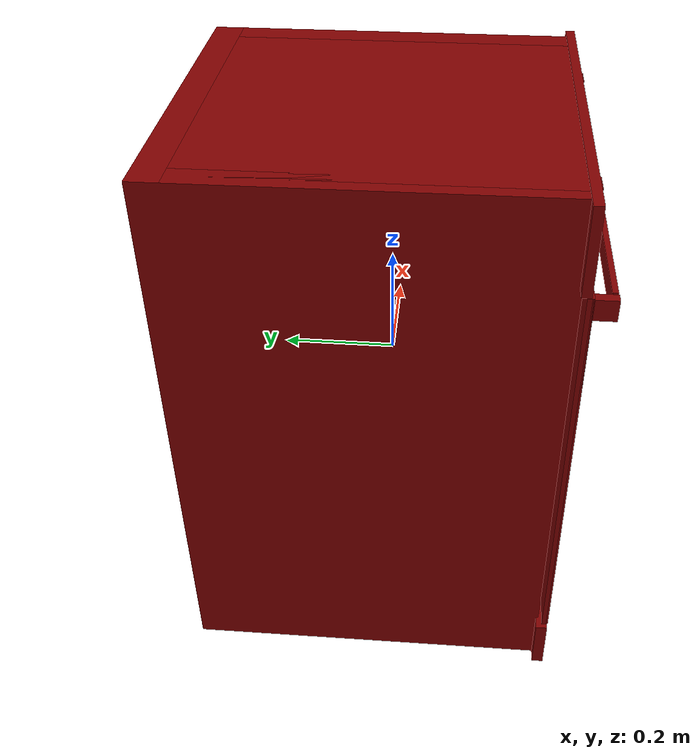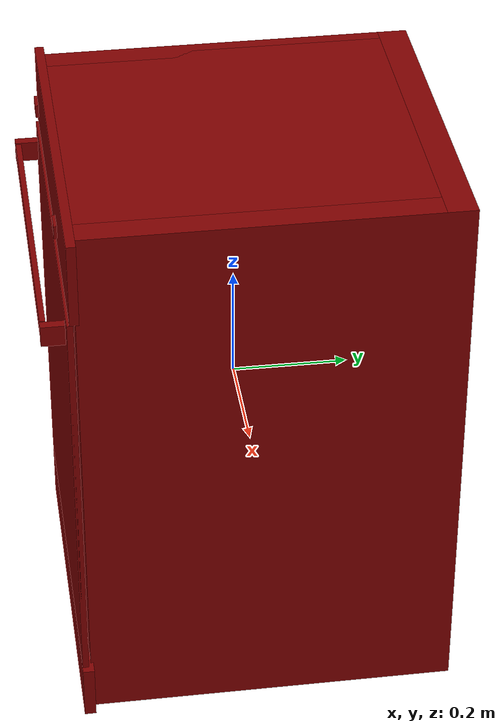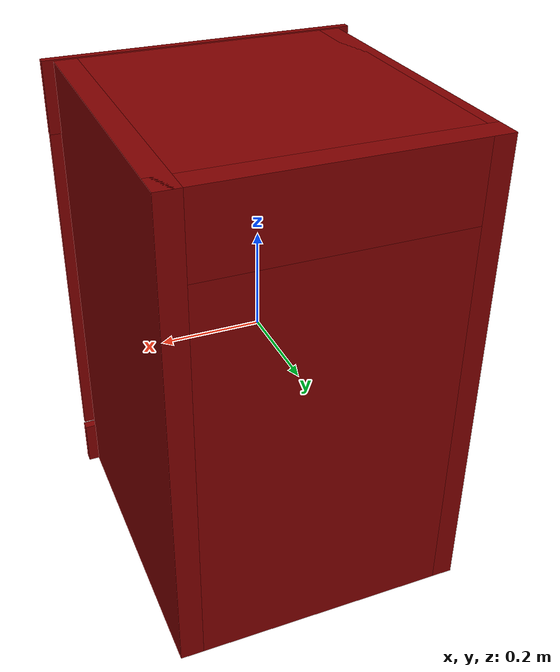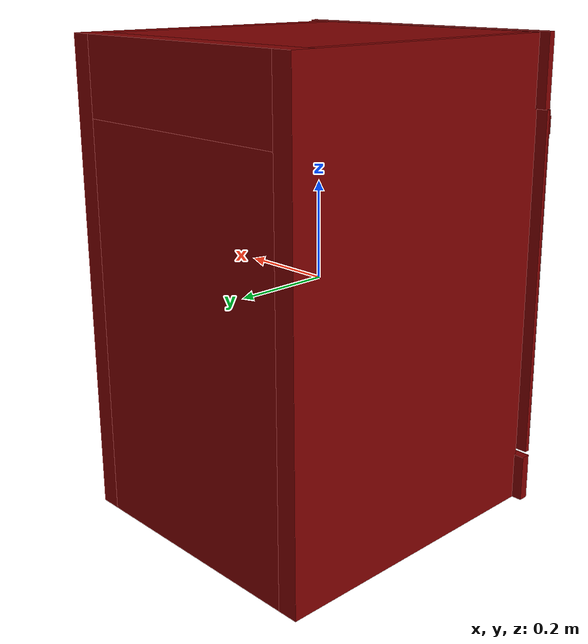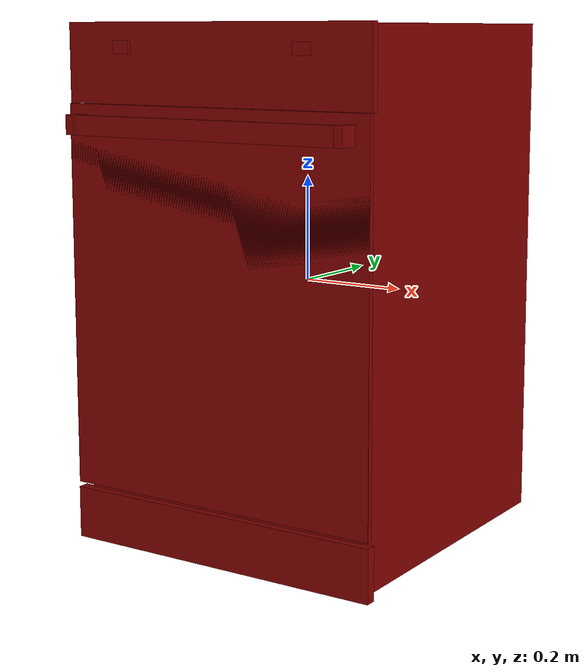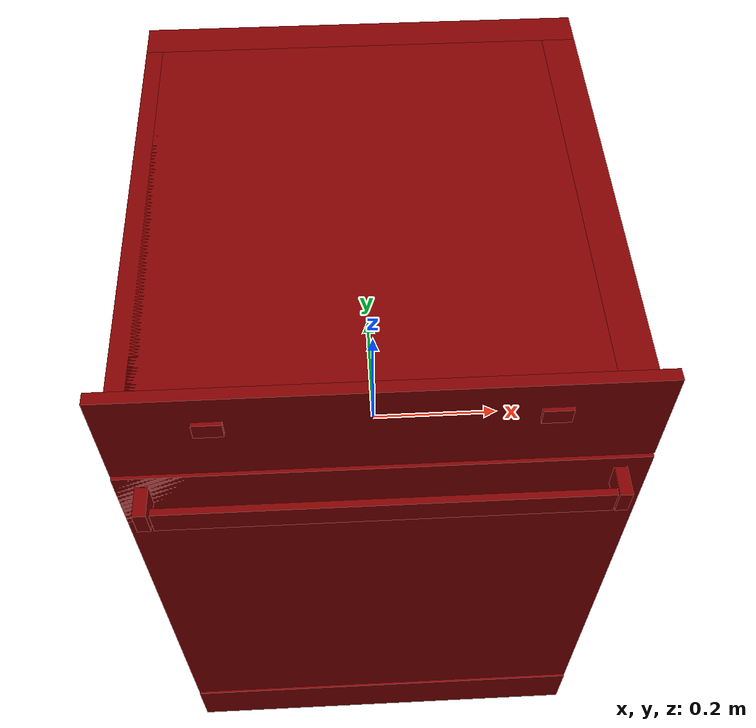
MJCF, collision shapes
<?xml version='1.0' encoding='UTF-8'?>
<mujoco model="model">
  <option timestep="0.002" gravity="0.0 0.0 -9.81"/>
  <compiler angle="radian"/>
  <asset>
    <mesh file="visuals/button_lock.obj" name="button_lock_vis"/>
    <mesh file="visuals/button_power.obj" name="button_power_vis"/>
    <mesh file="visuals/Body001.obj" name="Body001_vis"/>
    <mesh file="visuals/door.obj" name="door_vis"/>
    <mesh file="visuals/rack0.obj" name="rack0_vis"/>
    <mesh file="visuals/rack1.obj" name="rack1_vis"/>
    <texture file="visuals/T_BC001.png" name="Body001_material" type="2d"/>
    <material name="Body001_material" rgba="1 1 1 1.0" texture="Body001_material" shininess="0.5" specular="0.5"/>
    <texture file="visuals/T_BC001.png" name="button_lock_material" type="2d"/>
    <material name="button_lock_material" rgba="1 1 1 1.0" texture="button_lock_material" shininess="0.5" specular="0.3103448502657381"/>
    <texture file="visuals/T_BC001.png" name="button_power_material" type="2d"/>
    <material name="button_power_material" rgba="1 1 1 1.0" texture="button_power_material" shininess="0.5" specular="0.3103448502657381"/>
    <texture file="visuals/T_BC001.png" name="door_material" type="2d"/>
    <material name="door_material" rgba="1 1 1 1.0" texture="door_material" shininess="0.5" specular="0.5"/>
    <texture file="visuals/T_BC001.png" name="rack0_material" type="2d"/>
    <material name="rack0_material" rgba="1 1 1 1.0" texture="rack0_material" shininess="0.5" specular="5"/>
    <texture file="visuals/T_BC001.png" name="rack1_material" type="2d"/>
    <material name="rack1_material" rgba="1 1 1 1.0" texture="rack1_material" shininess="0.5" specular="5"/>
  </asset>
  <default>
    <default class="visual">
      <geom conaffinity="0" contype="0" group="1" type="mesh"/>
    </default>
    <default class="collision">
      <geom group="0" rgba="0.5 0 0 0.5"/>
    </default>
    <default class="spawn">
      <geom group="0" rgba="1 1 1 0.5" contype="0" conaffinity="0"/>
      <site group="0" rgba="1 1 1 0.5"/>
    </default>
    <default class="region">
      <geom group="1" conaffinity="0" contype="0" rgba="0 1 0 0"/>
    </default>
  </default>
  <worldbody>
    <body>
      <body name="object">
        <geom mesh="Body001_vis" type="mesh" solimp="0.998 0.998 0.001" solref="0.001 1" friction="0.95 0.3 0.1" class="visual" material="Body001_material"/>
        <geom class="collision" type="box" pos="0.27678153 0.02741197 -0.00124992" size="0.02303975448012352 0.3207204043865204 0.48832184076309204" quat="1.0 0.0 0.0 0.0"/>
        <geom class="collision" type="box" pos="0.00109850 0.02572379 0.40894777" size="0.2785699963569641 0.3224084675312042 0.0781240463256836" quat="1.0 0.0 0.0 0.0"/>
        <geom class="collision" type="box" pos="0.00109850 0.02553424 -0.43334389" size="0.2835451662540436 0.31878456473350525 0.05622786656022072" quat="1.0 0.0 0.0 0.0"/>
        <geom class="collision" type="box" pos="-0.00001807 0.32272574 -0.00124987" size="0.29983875155448914 0.025406407192349434 0.48832184076309204" quat="1.0 0.0 0.0 0.0"/>
        <geom class="collision" type="box" pos="-0.23403548 0.01761582 0.01407012" size="0.022516710683703423 0.28532058000564575 0.007528679445385933" quat="1.0 0.0 0.0 0.0"/>
        <geom class="collision" type="box" pos="-0.00003960 -0.29873434 -0.43907839" size="0.3223387598991394 0.010000337846577168 0.049591921269893646" quat="1.0 0.0 0.0 0.0"/>
        <geom class="collision" type="box" pos="0.00003939 -0.29657165 0.41642144" size="0.3223385214805603 0.007837408222258091 0.07315186411142349" quat="1.0 0.0 0.0 0.0"/>
        <geom class="collision" type="box" pos="-0.27809176 0.02741194 -0.00124997" size="0.02176547609269619 0.3207204043865204 0.4883217513561249" quat="1.0 0.0 0.0 0.0"/>
        <geom class="collision" type="box" pos="-0.23403548 0.01761582 -0.26421988" size="0.022516710683703423 0.28532058000564575 0.006652594543993473" quat="1.0 0.0 0.0 0.0"/>
        <geom class="collision" type="box" pos="0.23040469 0.01761582 -0.26433200" size="0.02455715648829937 0.28532058000564575 0.0065404633060097694" quat="1.0 0.0 0.0 0.0"/>
        <geom class="collision" type="box" pos="0.23040469 0.01761582 0.01407362" size="0.02455715648829937 0.28532058000564575 0.0075321807526052" quat="1.0 0.0 0.0 0.0"/>
        <body name="button_lock">
          <joint axis="0.0 1.0 0.0" pos="0.19055155 -0.31104577 0.44505936" limited="true" name="button_lock_joint" range="0.0 0.003" type="slide" damping="1" frictionloss="1" armature=".01" stiffness="4" springref="-1"/>
          <geom mesh="button_lock_vis" type="mesh" solimp="0.998 0.998 0.001" solref="0.001 1" friction="0.95 0.3 0.1" class="visual" material="button_lock_material"/>
          <geom class="collision" type="box" pos="0.19034868 -0.31267155 0.44500965" size="0.017222853377461433 0.002614381490275264 0.01137451734393835" quat="1.0 0.0 0.0 0.0"/>
        </body>
        <body name="button_power">
          <joint axis="0.0 1.0 0.0" pos="-0.19386935 -0.31104577 0.44505936" limited="true" name="button_power_joint" range="0.0 0.003" type="slide" damping="1" frictionloss="1" armature=".01" stiffness="4" springref="-1"/>
          <geom mesh="button_power_vis" type="mesh" solimp="0.998 0.998 0.001" solref="0.001 1" friction="0.95 0.3 0.1" class="visual" material="button_power_material"/>
          <geom class="collision" type="box" pos="-0.19387625 -0.31267155 0.44500965" size="0.01722284033894539 0.0026143789291381836 0.011374504305422306" quat="1.0 0.0 0.0 0.0"/>
        </body>
        <body name="door">
          <joint axis="1.0 0.0 0.0" pos="-0.0001505 -0.30873461135792435 -0.3791860395227051" limited="true" name="door_joint" range="0.0 0.6235987755982988" type="hinge" damping="1" frictionloss="10" armature="1" stiffness="2"/>
          <geom mesh="door_vis" type="mesh" solimp="0.998 0.998 0.001" solref="0.001 1" friction="0.95 0.3 0.1" class="visual" material="door_material"/>
          <geom class="collision" type="box" pos="-0.00015050 -0.30329314 -0.01839531" size="0.32139691710472107 0.00544140487909317 0.36079609394073486" quat="1.0 0.0 0.0 0.0"/>
          <geom class="collision" type="box" pos="-0.00119755 -0.34371615 0.30582523" size="0.2758886218070984 0.004677655175328255 0.01819409243762493" quat="1.0 0.0 0.0 0.0" name="door_handle_main"/>
          <geom class="collision" type="box" pos="-0.28891420 -0.32916099 0.30582523" size="0.008229694329202175 0.019743427634239197 0.01819407008588314" quat="1.0 0.0 0.0 0.0"/>
          <geom class="collision" type="box" pos="0.28469649 -0.32916099 0.30582523" size="0.007895516231656075 0.019743436947464943 0.018194079399108887" quat="1.0 0.0 0.0 0.0"/>
          <geom class="collision" type="box" pos="-0.00015050 -0.30708245 -0.01839531" size="0.32139691710472107 0.0016521613579243422 0.3607907295227051" quat="1.0 0.0 0.0 0.0" name="door_main"/>
        </body>
        <body name="rack0">
          <geom class="region" name="reg_rack0" type="box" pos="0.002374139999999997 0.027687555000000003 -0.12086479" size="0.22553667 0.207498645 0.12265504999999999"/>
          <joint axis="0.0 -1.0 0.0" pos="0.00157052 0.02620097 -0.15502195" limited="true" name="rack0_joint" range="0.0 0.163" type="slide" damping="1" frictionloss="1" armature=".01" stiffness="0.05"/>
          <geom mesh="rack0_vis" type="mesh" solimp="0.998 0.998 0.001" solref="0.001 1" friction="0.95 0.3 0.1" class="visual" material="rack0_material"/>
          <geom class="collision" type="cylinder" pos="-0.01910914 0.17006942 -0.19183671" size="0.0025402321480214596 0.061900075525045395" quat="4.3319283804521547e-07 -2.0873290651479692e-08 0.0992436558008194 -0.9950631856918335"/>
          <geom class="collision" type="cylinder" pos="-0.01910915 0.08137975 -0.19176318" size="0.0025402321480214596 0.061900075525045395" quat="7.976017286637216e-07 -4.6659700103646173e-08 -0.0849602147936821 -0.99638432264328"/>
          <geom class="collision" type="cylinder" pos="-0.01910915 -0.02637292 -0.19187245" size="0.0025402321480214596 0.0619000680744648" quat="5.6451420960002e-07 -8.122519545850082e-08 -0.1087351143360138 -0.9940707683563232"/>
          <geom class="collision" type="cylinder" pos="-0.01910915 -0.13290045 -0.19176318" size="0.0025402321480214596 0.061900075525045395" quat="7.976017286637216e-07 -4.6659700103646173e-08 -0.0849602147936821 -0.99638432264328"/>
          <geom class="collision" type="cylinder" pos="-0.05855283 0.17036282 -0.19177759" size="0.0025402321480214596 0.061900075525045395" quat="4.3319283804521547e-07 -2.0873290651479692e-08 0.0992436558008194 -0.9950631856918335"/>
          <geom class="collision" type="cylinder" pos="-0.05855283 0.08167473 -0.19181384" size="0.0025402321480214596 0.061900075525045395" quat="7.976017286637216e-07 -4.6659700103646173e-08 -0.0849602147936821 -0.99638432264328"/>
          <geom class="collision" type="cylinder" pos="-0.05855283 -0.02608070 -0.19193715" size="0.0025402321480214596 0.0619000680744648" quat="5.6451420960002e-07 -8.122519545850082e-08 -0.1087351143360138 -0.9940707683563232"/>
          <geom class="collision" type="cylinder" pos="-0.05855283 -0.13260547 -0.19181384" size="0.0025402321480214596 0.061900075525045395" quat="7.976017286637216e-07 -4.6659700103646173e-08 -0.0849602147936821 -0.99638432264328"/>
          <geom class="collision" type="cylinder" pos="-0.09647948 0.17036282 -0.19177759" size="0.0025402321480214596 0.061900075525045395" quat="4.3319283804521547e-07 -2.0873290651479692e-08 0.0992436558008194 -0.9950631856918335"/>
          <geom class="collision" type="cylinder" pos="-0.09647948 0.08167473 -0.19181384" size="0.0025402321480214596 0.061900075525045395" quat="7.976017286637216e-07 -4.6659700103646173e-08 -0.0849602147936821 -0.99638432264328"/>
          <geom class="collision" type="cylinder" pos="-0.09647948 -0.02608070 -0.19193715" size="0.0025402321480214596 0.0619000680744648" quat="5.6451420960002e-07 -8.122519545850082e-08 -0.1087351143360138 -0.9940707683563232"/>
          <geom class="collision" type="cylinder" pos="-0.09647948 -0.13260547 -0.19181384" size="0.0025402321480214596 0.061900075525045395" quat="7.976017286637216e-07 -4.6659700103646173e-08 -0.0849602147936821 -0.99638432264328"/>
          <geom class="collision" type="cylinder" pos="-0.13537984 0.17036282 -0.19177759" size="0.0025402321480214596 0.061900075525045395" quat="4.3319283804521547e-07 -2.0873290651479692e-08 0.0992436558008194 -0.9950631856918335"/>
          <geom class="collision" type="cylinder" pos="-0.13537984 0.08167473 -0.19181384" size="0.0025402321480214596 0.061900075525045395" quat="7.976017286637216e-07 -4.6659700103646173e-08 -0.0849602147936821 -0.99638432264328"/>
          <geom class="collision" type="cylinder" pos="-0.13537984 -0.02608070 -0.19193715" size="0.0025402321480214596 0.0619000680744648" quat="5.6451420960002e-07 -8.122519545850082e-08 -0.1087351143360138 -0.9940707683563232"/>
          <geom class="collision" type="cylinder" pos="-0.13537984 -0.13260547 -0.19181384" size="0.0025402321480214596 0.061900075525045395" quat="7.976017286637216e-07 -4.6659700103646173e-08 -0.0849602147936821 -0.99638432264328"/>
          <geom class="collision" type="cylinder" pos="-0.16553205 0.17036281 -0.19177762" size="0.0025402321480214596 0.061900075525045395" quat="4.3319283804521547e-07 -2.0873290651479692e-08 0.0992436558008194 -0.9950631856918335"/>
          <geom class="collision" type="cylinder" pos="-0.16553205 0.08167471 -0.19181386" size="0.0025402321480214596 0.061900075525045395" quat="7.976017286637216e-07 -4.6659700103646173e-08 -0.0849602147936821 -0.99638432264328"/>
          <geom class="collision" type="cylinder" pos="-0.16553205 -0.02608072 -0.19193716" size="0.0025402321480214596 0.0619000680744648" quat="5.6451420960002e-07 -8.122519545850082e-08 -0.1087351143360138 -0.9940707683563232"/>
          <geom class="collision" type="cylinder" pos="-0.16553205 -0.13260550 -0.19181386" size="0.0025402321480214596 0.061900075525045395" quat="7.976017286637216e-07 -4.6659700103646173e-08 -0.0849602147936821 -0.99638432264328"/>
          <geom class="collision" type="cylinder" pos="-0.20472381 0.17036281 -0.19177762" size="0.0025402321480214596 0.061900075525045395" quat="4.3319283804521547e-07 -2.0873290651479692e-08 0.0992436558008194 -0.9950631856918335"/>
          <geom class="collision" type="cylinder" pos="-0.20472381 0.08167471 -0.19181386" size="0.0025402321480214596 0.061900075525045395" quat="7.976017286637216e-07 -4.6659700103646173e-08 -0.0849602147936821 -0.99638432264328"/>
          <geom class="collision" type="cylinder" pos="-0.20472381 -0.02608072 -0.19193716" size="0.0025402321480214596 0.0619000680744648" quat="5.6451420960002e-07 -8.122519545850082e-08 -0.1087351143360138 -0.9940707683563232"/>
          <geom class="collision" type="cylinder" pos="-0.20472381 -0.13260550 -0.19181386" size="0.0025402321480214596 0.061900075525045395" quat="7.976017286637216e-07 -4.6659700103646173e-08 -0.0849602147936821 -0.99638432264328"/>
          <geom class="collision" type="cylinder" pos="0.01846163 0.17036282 -0.19177759" size="0.0025402321480214596 0.061900075525045395" quat="4.3319283804521547e-07 -2.0873290651479692e-08 0.0992436558008194 -0.9950631856918335"/>
          <geom class="collision" type="cylinder" pos="0.01846163 0.08167473 -0.19181384" size="0.0025402321480214596 0.061900075525045395" quat="7.976017286637216e-07 -4.6659700103646173e-08 -0.0849602147936821 -0.99638432264328"/>
          <geom class="collision" type="cylinder" pos="0.01846163 -0.02608070 -0.19193715" size="0.0025402321480214596 0.0619000680744648" quat="5.6451420960002e-07 -8.122519545850082e-08 -0.1087351143360138 -0.9940707683563232"/>
          <geom class="collision" type="cylinder" pos="0.01846163 -0.13260547 -0.19181384" size="0.0025402321480214596 0.061900075525045395" quat="7.976017286637216e-07 -4.6659700103646173e-08 -0.0849602147936821 -0.99638432264328"/>
          <geom class="collision" type="cylinder" pos="0.05753631 0.17036282 -0.19177759" size="0.0025402321480214596 0.061900075525045395" quat="4.3319283804521547e-07 -2.0873290651479692e-08 0.0992436558008194 -0.9950631856918335"/>
          <geom class="collision" type="cylinder" pos="0.05753631 0.08167473 -0.19181384" size="0.0025402321480214596 0.061900075525045395" quat="7.976017286637216e-07 -4.6659700103646173e-08 -0.0849602147936821 -0.99638432264328"/>
          <geom class="collision" type="cylinder" pos="0.05753631 -0.02608070 -0.19193715" size="0.0025402321480214596 0.0619000680744648" quat="5.6451420960002e-07 -8.122519545850082e-08 -0.1087351143360138 -0.9940707683563232"/>
          <geom class="collision" type="cylinder" pos="0.05753631 -0.13260547 -0.19181384" size="0.0025402321480214596 0.061900075525045395" quat="7.976017286637216e-07 -4.6659700103646173e-08 -0.0849602147936821 -0.99638432264328"/>
          <geom class="collision" type="cylinder" pos="0.09570927 0.17036282 -0.19177759" size="0.0025402321480214596 0.061900075525045395" quat="4.3319283804521547e-07 -2.0873290651479692e-08 0.0992436558008194 -0.9950631856918335"/>
          <geom class="collision" type="cylinder" pos="0.09570927 0.08167473 -0.19181384" size="0.0025402321480214596 0.061900075525045395" quat="7.976017286637216e-07 -4.6659700103646173e-08 -0.0849602147936821 -0.99638432264328"/>
          <geom class="collision" type="cylinder" pos="0.09570927 -0.02608070 -0.19193715" size="0.0025402321480214596 0.0619000680744648" quat="5.6451420960002e-07 -8.122519545850082e-08 -0.1087351143360138 -0.9940707683563232"/>
          <geom class="collision" type="cylinder" pos="0.09570927 -0.13260547 -0.19181384" size="0.0025402321480214596 0.061900075525045395" quat="7.976017286637216e-07 -4.6659700103646173e-08 -0.0849602147936821 -0.99638432264328"/>
          <geom class="collision" type="cylinder" pos="0.13423637 0.17036282 -0.19177759" size="0.0025402321480214596 0.061900075525045395" quat="4.3319283804521547e-07 -2.0873290651479692e-08 0.0992436558008194 -0.9950631856918335"/>
          <geom class="collision" type="cylinder" pos="0.13423637 0.08167473 -0.19181384" size="0.0025402321480214596 0.061900075525045395" quat="7.976017286637216e-07 -4.6659700103646173e-08 -0.0849602147936821 -0.99638432264328"/>
          <geom class="collision" type="cylinder" pos="0.13423637 -0.02608070 -0.19193715" size="0.0025402321480214596 0.0619000680744648" quat="5.6451420960002e-07 -8.122519545850082e-08 -0.1087351143360138 -0.9940707683563232"/>
          <geom class="collision" type="cylinder" pos="0.13423637 -0.13260547 -0.19181384" size="0.0025402321480214596 0.061900075525045395" quat="7.976017286637216e-07 -4.6659700103646173e-08 -0.0849602147936821 -0.99638432264328"/>
          <geom class="collision" type="cylinder" pos="0.17325029 0.17036282 -0.19177759" size="0.0025402321480214596 0.061900075525045395" quat="4.3319283804521547e-07 -2.0873290651479692e-08 0.0992436558008194 -0.9950631856918335"/>
          <geom class="collision" type="cylinder" pos="0.17325029 0.08167473 -0.19181384" size="0.0025402321480214596 0.061900075525045395" quat="7.976017286637216e-07 -4.6659700103646173e-08 -0.0849602147936821 -0.99638432264328"/>
          <geom class="collision" type="cylinder" pos="0.17325029 -0.02608070 -0.19193715" size="0.0025402321480214596 0.0619000680744648" quat="5.6451420960002e-07 -8.122519545850082e-08 -0.1087351143360138 -0.9940707683563232"/>
          <geom class="collision" type="cylinder" pos="0.17325029 -0.13260547 -0.19181384" size="0.0025402321480214596 0.061900075525045395" quat="7.976017286637216e-07 -4.6659700103646173e-08 -0.0849602147936821 -0.99638432264328"/>
          <geom class="collision" type="cylinder" pos="0.21194369 0.17036282 -0.19177759" size="0.0025402321480214596 0.061900075525045395" quat="4.3319283804521547e-07 -2.0873290651479692e-08 0.0992436558008194 -0.9950631856918335"/>
          <geom class="collision" type="box" pos="0.21194369 0.08167473 -0.19181384" size="0.0025402321480214596 0.0025402375031262636 0.061900075525045395" quat="7.976017286637216e-07 -4.6659700103646173e-08 -0.0849602147936821 -0.99638432264328"/>
          <geom class="collision" type="cylinder" pos="0.21194369 -0.02608070 -0.19193715" size="0.0025402321480214596 0.0619000680744648" quat="5.6451420960002e-07 -8.122519545850082e-08 -0.1087351143360138 -0.9940707683563232"/>
          <geom class="collision" type="cylinder" pos="0.21194369 -0.13260547 -0.19181384" size="0.0025402321480214596 0.061900075525045395" quat="7.976017286637216e-07 -4.6659700103646173e-08 -0.0849602147936821 -0.99638432264328"/>
          <geom class="collision" type="box" pos="-0.24047074 0.02512650 -0.15537560" size="0.005536212120205164 0.23354019224643707 0.10069926083087921" quat="1.0 0.0 0.0 0.0"/>
          <geom class="collision" type="box" pos="0.24430199 0.02512650 -0.15537560" size="0.005536212120205164 0.23354074358940125 0.10069926083087921" quat="1.0 0.0 0.0 0.0"/>
          <geom class="collision" type="box" pos="-0.14977731 -0.20261242 -0.15248580" size="0.08351397514343262 0.005536250304430723 0.09600427746772766" quat="1.0 0.0 0.0 0.0"/>
          <geom class="collision" type="box" pos="0.00025346 0.25212523 -0.15403986" size="0.2335447371006012 0.005536159500479698 0.09926461428403854" quat="1.0 0.0 0.0 0.0"/>
          <geom class="collision" type="box" pos="0.00025346 0.02542302 -0.25223982" size="0.23653914034366608 0.229714035987854 0.0023557692766189575" quat="1.0 0.0 0.0 0.0"/>
          <geom class="collision" type="box" pos="0.00025346 -0.20261242 -0.20905221" size="0.2335447371006012 0.005536250304430723 0.039437856525182724" quat="1.0 0.0 0.0 0.0"/>
          <geom class="collision" type="box" pos="0.17224070 -0.20261242 -0.15248580" size="0.07321833819150925 0.005536250304430723 0.09600427746772766" quat="1.0 0.0 0.0 0.0"/>
          <geom class="collision" type="box" pos="0.01558548 -0.20036314 -0.10090613" size="0.08813383430242538 0.0038762385956943035 0.0038762385956943035" quat="1.0 0.0 0.0 0.0"/>
          <geom class="collision" type="box" pos="0.01558548 -0.20468276 -0.05838942" size="0.0881337970495224 0.003876236267387867 0.003876236267387867" quat="1.0 0.0 0.0 0.0"/>
        </body>
        <body name="rack1">
          <geom class="region" name="reg_rack1" type="box" pos="0.0023741349999999994 0.027687569999999995 0.18267924" size="0.225536695 0.20749866 0.14307583"/>
          <joint axis="0.0 -1.0 0.0" pos="0.00157052 0.02620097 0.12270938" limited="true" name="rack1_joint" range="0.0 0.3235" type="slide" damping="1" frictionloss="1" armature=".01" stiffness="0.05"/>
          <geom mesh="rack1_vis" type="mesh" solimp="0.998 0.998 0.001" solref="0.001 1" friction="0.95 0.3 0.1" class="visual" material="rack1_material"/>
          <geom class="collision" type="cylinder" pos="0.21194369 0.17036282 0.08595777" size="0.0025402321480214596 0.061900075525045395" quat="4.3319283804521547e-07 -2.0873290651479692e-08 0.0992436558008194 -0.9950631856918335"/>
          <geom class="collision" type="cylinder" pos="0.17325029 0.17036282 0.08595777" size="0.0025402321480214596 0.061900075525045395" quat="4.3319283804521547e-07 -2.0873290651479692e-08 0.0992436558008194 -0.9950631856918335"/>
          <geom class="collision" type="cylinder" pos="0.13423637 0.17036282 0.08595777" size="0.0025402321480214596 0.061900075525045395" quat="4.3319283804521547e-07 -2.0873290651479692e-08 0.0992436558008194 -0.9950631856918335"/>
          <geom class="collision" type="cylinder" pos="0.09570927 0.17036282 0.08595777" size="0.0025402321480214596 0.061900075525045395" quat="4.3319283804521547e-07 -2.0873290651479692e-08 0.0992436558008194 -0.9950631856918335"/>
          <geom class="collision" type="cylinder" pos="0.05753631 0.17036282 0.08595777" size="0.0025402321480214596 0.061900075525045395" quat="4.3319283804521547e-07 -2.0873290651479692e-08 0.0992436558008194 -0.9950631856918335"/>
          <geom class="collision" type="cylinder" pos="0.01846163 0.17036282 0.08595777" size="0.0025402321480214596 0.061900075525045395" quat="4.3319283804521547e-07 -2.0873290651479692e-08 0.0992436558008194 -0.9950631856918335"/>
          <geom class="collision" type="cylinder" pos="-0.20472381 0.17036281 0.08595776" size="0.0025402321480214596 0.061900075525045395" quat="4.3319283804521547e-07 -2.0873290651479692e-08 0.0992436558008194 -0.9950631856918335"/>
          <geom class="collision" type="cylinder" pos="-0.16553205 0.17036281 0.08595776" size="0.0025402321480214596 0.061900075525045395" quat="4.3319283804521547e-07 -2.0873290651479692e-08 0.0992436558008194 -0.9950631856918335"/>
          <geom class="collision" type="cylinder" pos="-0.13537984 0.17036282 0.08595777" size="0.0025402321480214596 0.061900075525045395" quat="4.3319283804521547e-07 -2.0873290651479692e-08 0.0992436558008194 -0.9950631856918335"/>
          <geom class="collision" type="cylinder" pos="-0.09647948 0.17036282 0.08595777" size="0.0025402321480214596 0.061900075525045395" quat="4.3319283804521547e-07 -2.0873290651479692e-08 0.0992436558008194 -0.9950631856918335"/>
          <geom class="collision" type="cylinder" pos="-0.05855283 0.17036282 0.08595777" size="0.0025402321480214596 0.061900075525045395" quat="4.3319283804521547e-07 -2.0873290651479692e-08 0.0992436558008194 -0.9950631856918335"/>
          <geom class="collision" type="cylinder" pos="-0.01910914 0.17006942 0.08589866" size="0.0025402321480214596 0.061900075525045395" quat="4.3319283804521547e-07 -2.0873290651479692e-08 0.0992436558008194 -0.9950631856918335"/>
          <geom class="collision" type="cylinder" pos="0.21194369 0.08167473 0.08592151" size="0.0025402321480214596 0.061900075525045395" quat="7.976017286637216e-07 -4.6659700103646173e-08 -0.0849602147936821 -0.99638432264328"/>
          <geom class="collision" type="cylinder" pos="0.17325029 0.08167473 0.08592151" size="0.0025402321480214596 0.061900075525045395" quat="7.976017286637216e-07 -4.6659700103646173e-08 -0.0849602147936821 -0.99638432264328"/>
          <geom class="collision" type="cylinder" pos="0.13423637 0.08167473 0.08592151" size="0.0025402321480214596 0.061900075525045395" quat="7.976017286637216e-07 -4.6659700103646173e-08 -0.0849602147936821 -0.99638432264328"/>
          <geom class="collision" type="cylinder" pos="0.09570927 0.08167473 0.08592151" size="0.0025402321480214596 0.061900075525045395" quat="7.976017286637216e-07 -4.6659700103646173e-08 -0.0849602147936821 -0.99638432264328"/>
          <geom class="collision" type="cylinder" pos="0.05753631 0.08167473 0.08592151" size="0.0025402321480214596 0.061900075525045395" quat="7.976017286637216e-07 -4.6659700103646173e-08 -0.0849602147936821 -0.99638432264328"/>
          <geom class="collision" type="cylinder" pos="0.01846163 0.08167473 0.08592151" size="0.0025402321480214596 0.061900075525045395" quat="7.976017286637216e-07 -4.6659700103646173e-08 -0.0849602147936821 -0.99638432264328"/>
          <geom class="collision" type="cylinder" pos="-0.20472381 0.08167471 0.08592150" size="0.0025402321480214596 0.061900075525045395" quat="7.976017286637216e-07 -4.6659700103646173e-08 -0.0849602147936821 -0.99638432264328"/>
          <geom class="collision" type="cylinder" pos="-0.16553205 0.08167471 0.08592150" size="0.0025402321480214596 0.061900075525045395" quat="7.976017286637216e-07 -4.6659700103646173e-08 -0.0849602147936821 -0.99638432264328"/>
          <geom class="collision" type="cylinder" pos="-0.13537984 0.08167473 0.08592151" size="0.0025402321480214596 0.061900075525045395" quat="7.976017286637216e-07 -4.6659700103646173e-08 -0.0849602147936821 -0.99638432264328"/>
          <geom class="collision" type="cylinder" pos="-0.09647948 0.08167473 0.08592151" size="0.0025402321480214596 0.061900075525045395" quat="7.976017286637216e-07 -4.6659700103646173e-08 -0.0849602147936821 -0.99638432264328"/>
          <geom class="collision" type="cylinder" pos="-0.05855283 0.08167473 0.08592151" size="0.0025402321480214596 0.061900075525045395" quat="7.976017286637216e-07 -4.6659700103646173e-08 -0.0849602147936821 -0.99638432264328"/>
          <geom class="collision" type="cylinder" pos="-0.01910915 0.08137975 0.08597218" size="0.0025402321480214596 0.061900075525045395" quat="7.976017286637216e-07 -4.6659700103646173e-08 -0.0849602147936821 -0.99638432264328"/>
          <geom class="collision" type="cylinder" pos="0.21194369 -0.02608070 0.08579820" size="0.0025402321480214596 0.0619000680744648" quat="5.6451420960002e-07 -8.122519545850082e-08 -0.1087351143360138 -0.9940707683563232"/>
          <geom class="collision" type="cylinder" pos="0.17325029 -0.02608070 0.08579820" size="0.0025402321480214596 0.0619000680744648" quat="5.6451420960002e-07 -8.122519545850082e-08 -0.1087351143360138 -0.9940707683563232"/>
          <geom class="collision" type="cylinder" pos="0.13423637 -0.02608070 0.08579820" size="0.0025402321480214596 0.0619000680744648" quat="5.6451420960002e-07 -8.122519545850082e-08 -0.1087351143360138 -0.9940707683563232"/>
          <geom class="collision" type="cylinder" pos="0.09570927 -0.02608070 0.08579820" size="0.0025402321480214596 0.0619000680744648" quat="5.6451420960002e-07 -8.122519545850082e-08 -0.1087351143360138 -0.9940707683563232"/>
          <geom class="collision" type="cylinder" pos="0.05753631 -0.02608070 0.08579820" size="0.0025402321480214596 0.0619000680744648" quat="5.6451420960002e-07 -8.122519545850082e-08 -0.1087351143360138 -0.9940707683563232"/>
          <geom class="collision" type="cylinder" pos="0.01846163 -0.02608070 0.08579820" size="0.0025402321480214596 0.0619000680744648" quat="5.6451420960002e-07 -8.122519545850082e-08 -0.1087351143360138 -0.9940707683563232"/>
          <geom class="collision" type="cylinder" pos="-0.20472381 -0.02608072 0.08579820" size="0.0025402321480214596 0.0619000680744648" quat="5.6451420960002e-07 -8.122519545850082e-08 -0.1087351143360138 -0.9940707683563232"/>
          <geom class="collision" type="cylinder" pos="-0.16553205 -0.02608072 0.08579820" size="0.0025402321480214596 0.0619000680744648" quat="5.6451420960002e-07 -8.122519545850082e-08 -0.1087351143360138 -0.9940707683563232"/>
          <geom class="collision" type="cylinder" pos="-0.13537984 -0.02608070 0.08579820" size="0.0025402321480214596 0.0619000680744648" quat="5.6451420960002e-07 -8.122519545850082e-08 -0.1087351143360138 -0.9940707683563232"/>
          <geom class="collision" type="cylinder" pos="-0.09647948 -0.02608070 0.08579820" size="0.0025402321480214596 0.0619000680744648" quat="5.6451420960002e-07 -8.122519545850082e-08 -0.1087351143360138 -0.9940707683563232"/>
          <geom class="collision" type="cylinder" pos="-0.05855283 -0.02608070 0.08579820" size="0.0025402321480214596 0.0619000680744648" quat="5.6451420960002e-07 -8.122519545850082e-08 -0.1087351143360138 -0.9940707683563232"/>
          <geom class="collision" type="cylinder" pos="-0.01910915 -0.02637292 0.08586290" size="0.0025402321480214596 0.0619000680744648" quat="5.6451420960002e-07 -8.122519545850082e-08 -0.1087351143360138 -0.9940707683563232"/>
          <geom class="collision" type="cylinder" pos="0.21194369 -0.13260547 0.08592151" size="0.0025402321480214596 0.061900075525045395" quat="7.976017286637216e-07 -4.6659700103646173e-08 -0.0849602147936821 -0.99638432264328"/>
          <geom class="collision" type="cylinder" pos="0.17325029 -0.13260547 0.08592151" size="0.0025402321480214596 0.061900075525045395" quat="7.976017286637216e-07 -4.6659700103646173e-08 -0.0849602147936821 -0.99638432264328"/>
          <geom class="collision" type="cylinder" pos="0.13423637 -0.13260547 0.08592151" size="0.0025402321480214596 0.061900075525045395" quat="7.976017286637216e-07 -4.6659700103646173e-08 -0.0849602147936821 -0.99638432264328"/>
          <geom class="collision" type="cylinder" pos="0.09570927 -0.13260547 0.08592151" size="0.0025402321480214596 0.061900075525045395" quat="7.976017286637216e-07 -4.6659700103646173e-08 -0.0849602147936821 -0.99638432264328"/>
          <geom class="collision" type="cylinder" pos="0.05753631 -0.13260547 0.08592151" size="0.0025402321480214596 0.061900075525045395" quat="7.976017286637216e-07 -4.6659700103646173e-08 -0.0849602147936821 -0.99638432264328"/>
          <geom class="collision" type="cylinder" pos="0.01846163 -0.13260547 0.08592151" size="0.0025402321480214596 0.061900075525045395" quat="7.976017286637216e-07 -4.6659700103646173e-08 -0.0849602147936821 -0.99638432264328"/>
          <geom class="collision" type="cylinder" pos="-0.20472381 -0.13260550 0.08592150" size="0.0025402321480214596 0.061900075525045395" quat="7.976017286637216e-07 -4.6659700103646173e-08 -0.0849602147936821 -0.99638432264328"/>
          <geom class="collision" type="cylinder" pos="-0.16553205 -0.13260550 0.08592150" size="0.0025402321480214596 0.061900075525045395" quat="7.976017286637216e-07 -4.6659700103646173e-08 -0.0849602147936821 -0.99638432264328"/>
          <geom class="collision" type="cylinder" pos="-0.13537984 -0.13260547 0.08592151" size="0.0025402321480214596 0.061900075525045395" quat="7.976017286637216e-07 -4.6659700103646173e-08 -0.0849602147936821 -0.99638432264328"/>
          <geom class="collision" type="box" pos="-0.09647948 -0.13260547 0.08592151" size="0.0025402321480214596 0.0025402375031262636 0.061900075525045395" quat="7.976017286637216e-07 -4.6659700103646173e-08 -0.0849602147936821 -0.99638432264328"/>
          <geom class="collision" type="cylinder" pos="-0.05855283 -0.13260547 0.08592151" size="0.0025402321480214596 0.061900075525045395" quat="7.976017286637216e-07 -4.6659700103646173e-08 -0.0849602147936821 -0.99638432264328"/>
          <geom class="collision" type="cylinder" pos="-0.01910915 -0.13290045 0.08597218" size="0.0025402321480214596 0.061900075525045395" quat="7.976017286637216e-07 -4.6659700103646173e-08 -0.0849602147936821 -0.99638432264328"/>
          <geom class="collision" type="box" pos="-0.24047074 0.02512650 0.12174066" size="0.005536212120205164 0.2335447371006012 0.09884707629680634" quat="1.0 0.0 0.0 0.0"/>
          <geom class="collision" type="box" pos="0.24372418 0.02512650 0.12174066" size="0.005536212120205164 0.2335447371006012 0.09884707629680634" quat="1.0 0.0 0.0 0.0"/>
          <geom class="collision" type="box" pos="-0.14977731 -0.20261242 0.12174066" size="0.08351397514343262 0.005536250304430723 0.09884707629680634" quat="1.0 0.0 0.0 0.0"/>
          <geom class="collision" type="box" pos="0.00025346 0.25552591 0.12174066" size="0.2335447371006012 0.005536250304430723 0.09884707629680634" quat="1.0 0.0 0.0 0.0"/>
          <geom class="collision" type="box" pos="0.00025346 0.02724784 0.02894861" size="0.23218710720539093 0.23049937188625336 0.00553613668307662" quat="1.0 0.0 0.0 0.0"/>
          <geom class="collision" type="box" pos="0.00025346 -0.20261242 0.06517425" size="0.2335447371006012 0.005536250304430723 0.0422806590795517" quat="1.0 0.0 0.0 0.0"/>
          <geom class="collision" type="box" pos="0.17224070 -0.20261242 0.12174066" size="0.07321833819150925 0.005536250304430723 0.09884707629680634" quat="1.0 0.0 0.0 0.0"/>
          <geom class="collision" type="box" pos="0.01558548 -0.20036314 0.17616314" size="0.08813416212797165 0.0038762593176215887 0.0038762593176215887" quat="1.0 0.0 0.0 0.0"/>
          <geom class="collision" type="box" pos="0.01558548 -0.20468276 0.21867985" size="0.08813412487506866 0.003876256989315152 0.003876256989315152" quat="1.0 0.0 0.0 0.0"/>
        </body>
        <geom class="region" name="reg_int" type="box" pos="-0.0007081999999999922 0.0065782299999999905 -0.019738795000000003" size="0.24699545 0.28690097999999997 0.348602455"/>
        <geom class="region" name="reg_main" type="box" pos="-9.999999994736442e-09 0.01969897499999998 0.0" size="0.32337822 0.329433485 0.49057175000000003"/>
      </body>
    </body>
  </worldbody>
  <actuator>
    <motor name="button_lock_joint_actuator" joint="button_lock_joint" gear="0.5"/>
    <motor name="button_power_joint_actuator" joint="button_power_joint" gear="0.5"/>
    <motor name="door_joint_actuator" joint="door_joint" gear="50"/>
    <motor name="rack0_joint_actuator" joint="rack0_joint" gear="50"/>
    <motor name="rack1_joint_actuator" joint="rack1_joint" gear="50"/>
  </actuator>
</mujoco>
